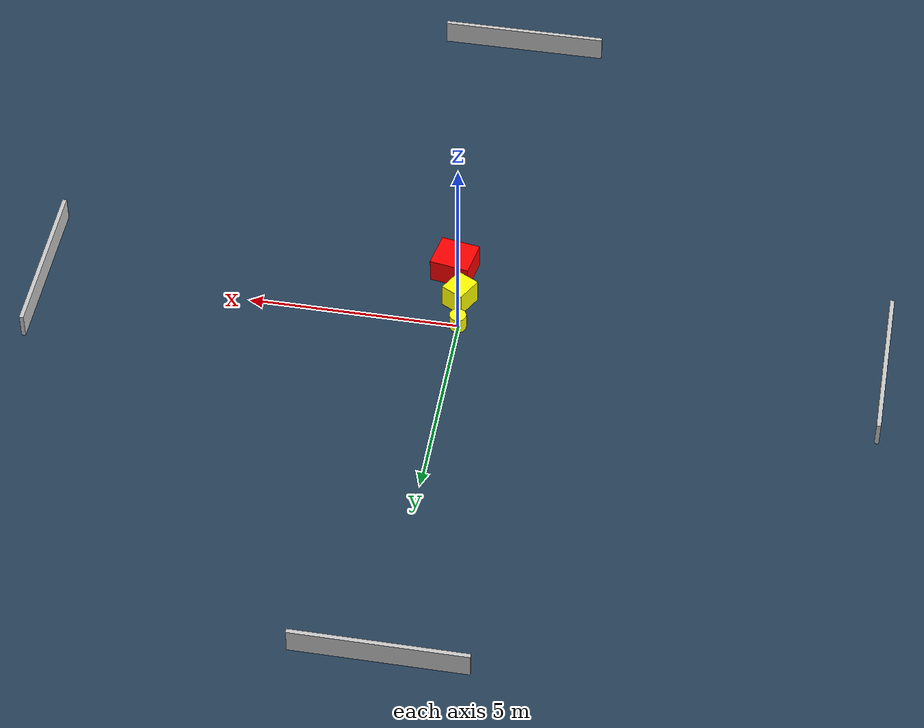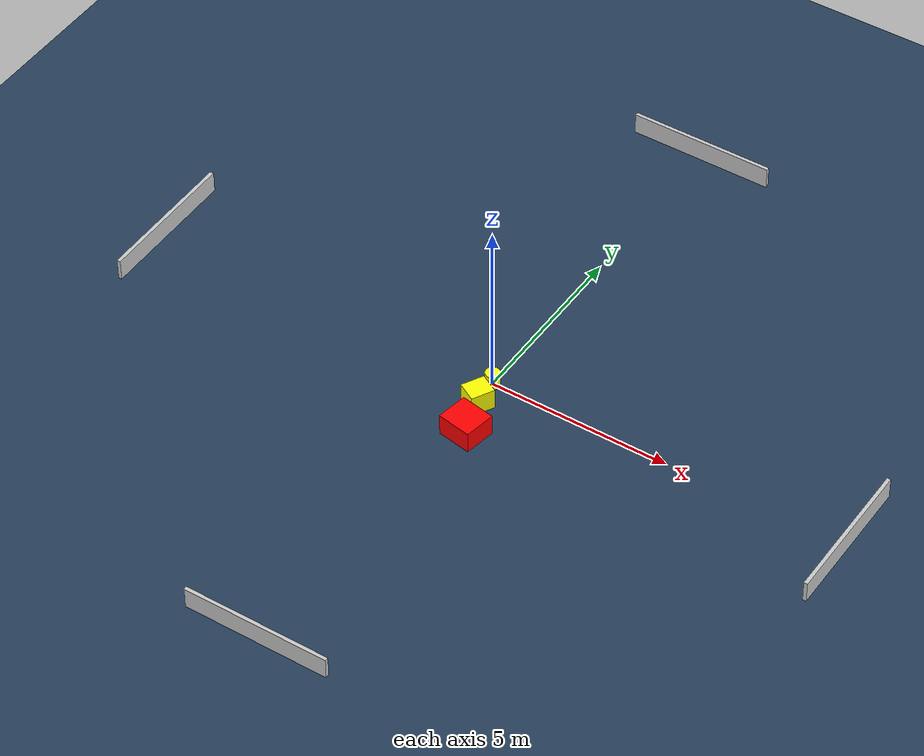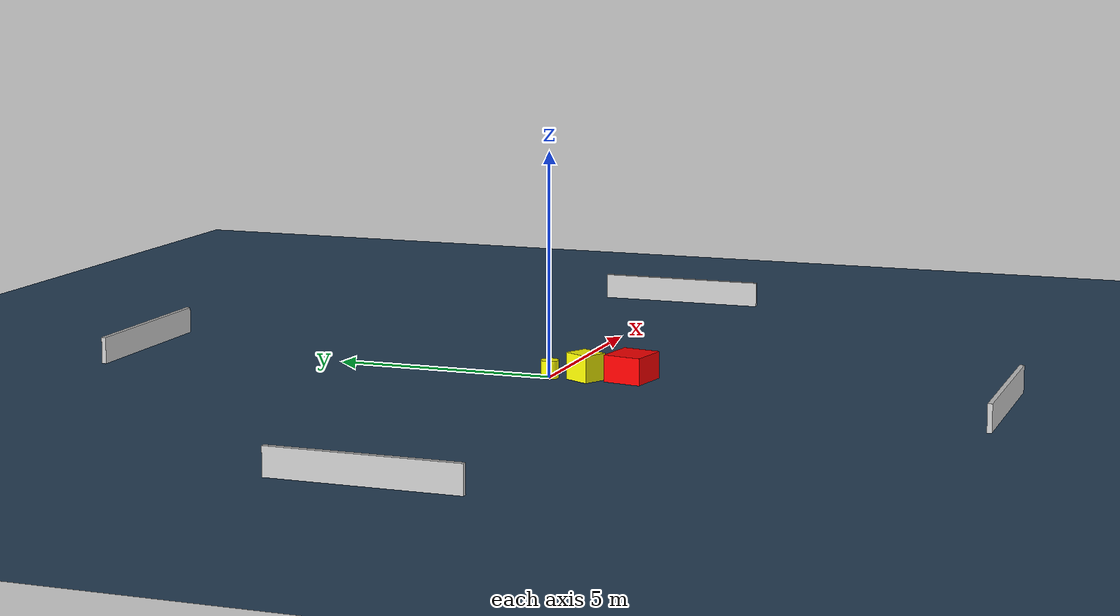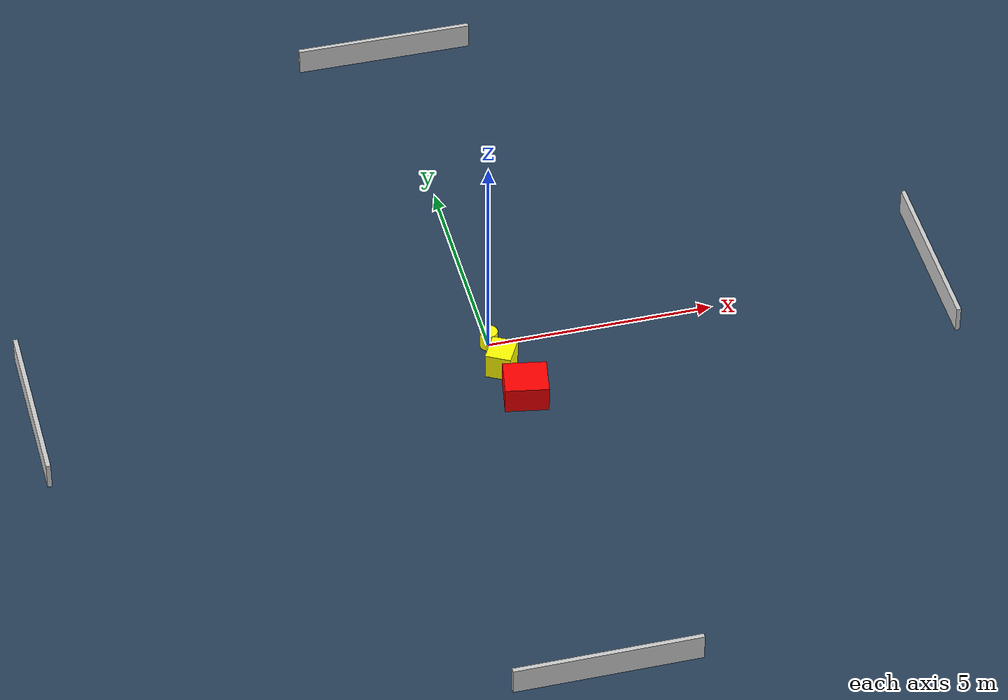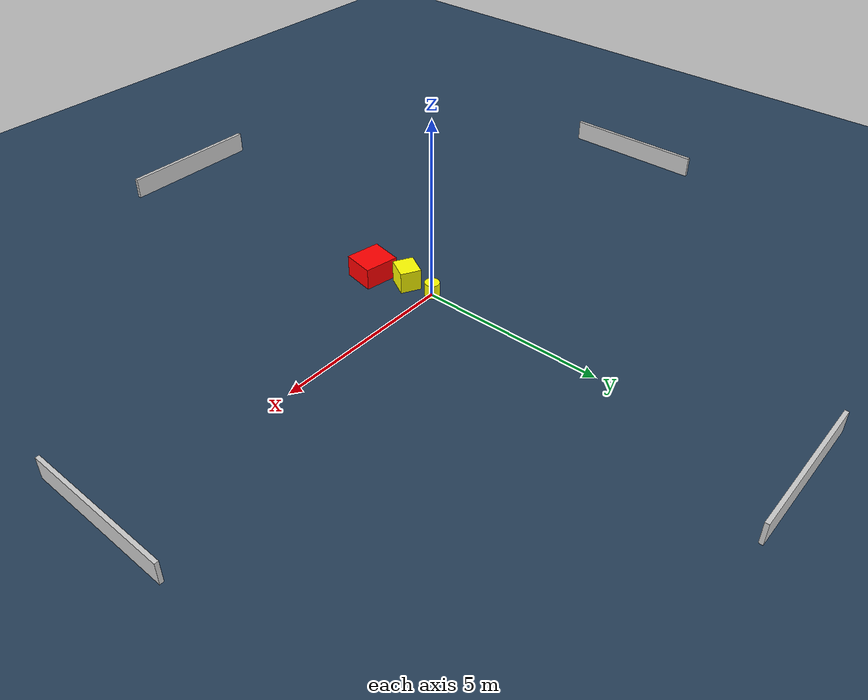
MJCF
<?xml version="1.0" ?>
<mujoco model="generated_environment">
  <option timestep="0.01" integrator="RK4" cone="elliptic"/>
  <default>
    <geom density="1"/>
  </default>
  <asset>
    <texture builtin="gradient" height="3072" name="skybox" rgb1="0.3 0.5 0.7" rgb2="0 0 0" type="skybox" width="512"/>
    <texture builtin="checker" height="300" name="groundplane" rgb1="0.2 0.3 0.4" rgb2="0.1 0.2 0.3" type="2d" width="300"/>
    <material name="groundplane" reflectance="0.2" texrepeat="5 5" texture="groundplane"/>
  </asset>
  <worldbody>
    <light dir="0 0 -1" directional="true" pos="0 0 1.5"/>
    <geom condim="3" friction="0.5 0.005 0.001" material="groundplane" name="floor" pos="0 0 0" size="0 0 0.05" type="plane"/>
    <body name="walls">
      <geom name="wall_1" condim="4" pos="-10.0 0.0 0.3" rgba="0.800000011920929 0.800000011920929 0.800000011920929 1.0" size="0.05 2.0 0.3" type="box"/>
      <geom name="wall_2" condim="4" pos="10.0 0.0 0.3" rgba="0.800000011920929 0.800000011920929 0.800000011920929 1.0" size="0.05 2.0 0.3" type="box"/>
      <geom name="wall_3" condim="4" pos="0.0 -10.0 0.3" rgba="0.800000011920929 0.800000011920929 0.800000011920929 1.0" size="2.0 0.05 0.3" type="box"/>
      <geom name="wall_4" condim="4" pos="0.0 10.0 0.3" rgba="0.800000011920929 0.800000011920929 0.800000011920929 1.0" size="2.0 0.05 0.3" type="box"/>
    </body>
    <body name="robot">
      <joint name="joint_x" type="slide" pos="0 0 0" axis="1 0 0"/>
      <joint name="joint_y" type="slide" pos="0 0 0" axis="0 1 0"/>
      <geom name="robot" type="cylinder" pos="0.0 0.0 0.2" size="0.2 0.2 0.0" mass="5.0" friction="1.0 0.005 0.0001" condim="4" rgba="1.0 1.0 0.0 1.0"/>
    </body>
    <body name="obstacle_1_movable">
      <geom name="obstacle_1_movable" condim="4" pos="0.08504108773005879 -0.8010811703529013 0.3" euler="0 0 61.38211530416375" friction="0.0 0.005 0.001" rgba="1.0 1.0 0.0 1.0" size="0.32098792198545245 0.2816319317979824 0.3" type="box" mass="0.1"/>
      <joint type="free"/>
    </body>
    <body name="obstacle_2_static">
      <geom name="obstacle_2_static" condim="4" pos="0.37602553967695684 -1.7727794172477496 0.3" euler="0 0 349.87064290755393" friction="0.0 0.005 0.001" rgba="1.0 0.0 0.0 1.0" size="0.47334753145134245 0.43150118945383065 0.3" type="box"/>
    </body>
  </worldbody>
  <actuator>
    <motor name="actuator_x" joint="joint_x" gear="1" ctrlrange="-1 1"/>
    <motor name="actuator_y" joint="joint_y" gear="1" ctrlrange="-1 1"/>
  </actuator>
</mujoco>
